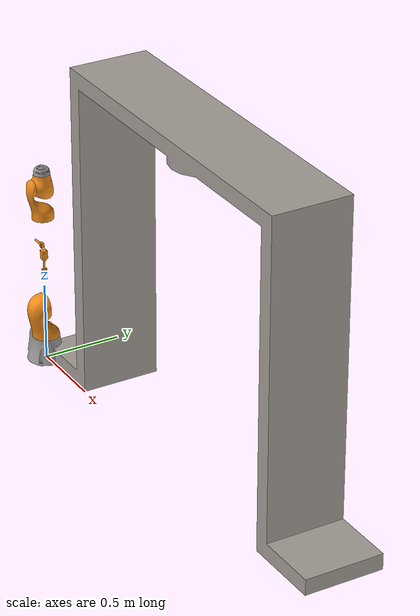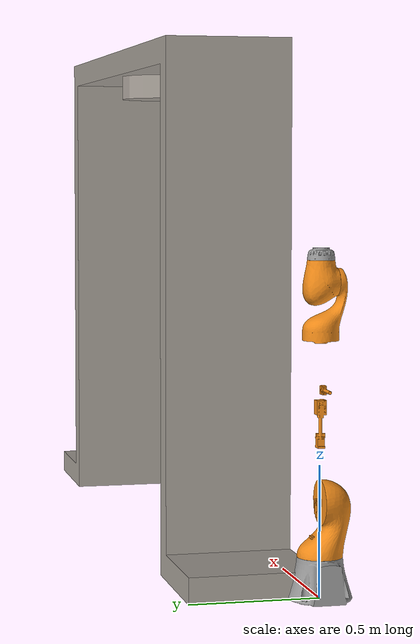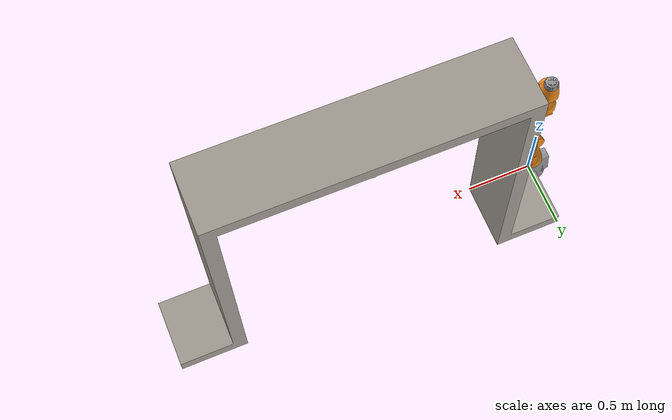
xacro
<?xml version="1.0"?>

<robot name="iiwa14" xmlns:xacro="http://www.ros.org/wiki/xacro">

  <xacro:arg name="hardware_interface" default="PositionJointInterface"/>
  <xacro:arg name="robot_name" default="iiwa"/>
  <xacro:arg name="origin_xyz" default="0 0 0"/>
  <xacro:arg name="origin_rpy" default="0 0 0"/>
  <!-- Import Rviz colors -->
  <xacro:include filename="$(find iiwa_description)/urdf/iiwa.gazebo.xacro" />
  <xacro:include filename="$(find iiwa_description)/urdf/materials.xacro" />
  <xacro:include filename="$(find iiwa_description)/urdf/iiwa.transmission.xacro" />
  <!--Import the lbr iiwa macro -->
  <xacro:include filename="$(find iiwa_description)/urdf/iiwa14.xacro"/>

  <!-- Fix to world just for testing -->

  <link name="world" />

  <joint
    name="fixed"
    type="fixed">
    <parent
      link="world" />
    <child
      link="frame" />
    <axis xyz="0 0 1"/>
  </joint>

  <link
    name="frame">
    <inertial>
      <origin
        xyz="1.5 0.25 1.25"
        rpy="0 0 0" />
      <mass
        value="2697" />
      <inertia
        ixx="0"
        ixy="0"
        ixz="0"
        iyy="0"
        iyz="0"
        izz="0" />
    </inertial>
    <visual>
      <origin
        xyz="0 0 0"
        rpy="0 0 0" />
      <geometry>
        <mesh
          filename="package://iiwa_description/meshes/iiwa14/visual/base_link.STL"/>
      </geometry>
      <material
        name="">
        <color
          rgba="0.64706 0.61961 0.58824 1" />
      </material>
    </visual>
    <collision>
      <origin
        xyz="0 0 0"
        rpy="0 0 0" />
      <geometry>
        <mesh
          filename="package://iiwa_description/meshes/iiwa14/collision/base_link.STL" />
      </geometry>
    </collision>
  </link>
  <!--iiwa-->
  <xacro:iiwa14 hardware_interface="$(arg hardware_interface)" robot_name="$(arg robot_name)" parent="world">
    <origin xyz="$(arg origin_xyz)" rpy="$(arg origin_rpy)" />
  </xacro:iiwa14>

  <xacro:iiwa_gazebo robot_name="$(arg robot_name)"/>
  <xacro:iiwa_transmission hardware_interface="$(arg hardware_interface)" robot_name="$(arg robot_name)"/>

</robot>

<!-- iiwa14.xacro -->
<robot xmlns:xacro="http://www.ros.org/wiki/xacro">

  <!-- some constants -->
  <xacro:property name="safety_controller_k_pos" value="100" />
  <xacro:property name="safety_controller_k_vel" value="2" />
  <xacro:property name="max_effort" value="5000"/>
  <xacro:property name="max_velocity" value="10"/>
  <xacro:property name="joint_friction" value="0.05" />
  <xacro:property name="joint_damping" value="10.8" />
  <xacro:property name="PIhalf" value="1.570796" />
  <xacro:property name="PI" value="3.141592" />

  <xacro:macro name="iiwa14" params="parent hardware_interface robot_name *origin">

    <!--joint between {parent} and link_0-->
    <joint name="${parent}_${robot_name}_joint" type="fixed">
      <xacro:insert_block name="origin"/>
      <parent link="${parent}"/>
      <child link="${robot_name}_link_0"/>
      <axis xyz="0 0 1"/>
    </joint>

    <link name="${robot_name}_link_0">
      <inertial>
        <origin xyz="-0.1 0 0.07" rpy="0 0 0"/>
        <mass value="5"/>
        <inertia ixx="0.05"  ixy="0"  ixz="0" iyy="0.06" iyz="0" izz="0.03" />
      </inertial>

      <visual>
        <origin xyz="0 0 0" rpy="0 0 0"/>
        <geometry>
          <mesh filename="package://iiwa_description/meshes/iiwa14/visual/link_0.stl"/>
        </geometry>
        <material name="Grey"/>
      </visual>

      <collision>
        <origin xyz="0 0 0" rpy="0 0 0"/>
        <geometry>
          <mesh filename="package://iiwa_description/meshes/iiwa14/collision/link_0.stl"/>
        </geometry>
        <material name="Grey"/>
      </collision>

      <self_collision_checking>
        <origin xyz="0 0 0" rpy="0 0 0"/>
        <geometry>
          <capsule radius="0.15" length="0.25"/>
        </geometry>
      </self_collision_checking>

    </link>

    <!-- joint between link_0 and link_1 -->
    <joint name="${robot_name}_joint_1" type="revolute">
      <parent link="${robot_name}_link_0"/>
      <child link="${robot_name}_link_1"/>
      <origin xyz="0 0 0.1575" rpy="0 0 0"/>
      <axis xyz="0 0 1"/>
      <limit lower="${-170 * PI / 180}" upper="${170 * PI / 180}"
             effort="${max_effort}" velocity="${max_velocity}" />
      <dynamics damping="${joint_damping}" friction="${joint_friction}"/>
    </joint>

    <link name="${robot_name}_link_1">
      <inertial>
        <origin xyz="0 -0.03 0.12" rpy="0 0 0"/>
        <mass value="4"/>
        <inertia ixx="0.1"  ixy="0"  ixz="0" iyy="0.09" iyz="0" izz="0.02" />
      </inertial>

      <visual>
        <origin xyz="0 0 0" rpy="0 0 0"/>
        <geometry>
          <mesh filename="package://iiwa_description/meshes/iiwa14/visual/link_1.stl"/>
        </geometry>
        <material name="Orange"/>
      </visual>

      <collision>
        <origin xyz="0 0 0" rpy="0 0 0"/>
        <geometry>
          <mesh filename="package://iiwa_description/meshes/iiwa14/collision/link_1.stl"/>
        </geometry>
        <material name="Orange"/>
      </collision>
    </link>

    <!-- joint between link_1 and link_2 -->
    <joint name="${robot_name}_joint_2" type="revolute">
      <parent link="${robot_name}_link_1"/>
      <child link="${robot_name}_link_2"/>
      <origin xyz="0 0 0.2025" rpy="${PI / 2}   0 ${PI}"/>
      <axis xyz="0 0 1"/>
      <limit lower="${-120 * PI / 180}" upper="${120 * PI / 180}"
             effort="${max_effort}" velocity="${max_velocity}" />
      <dynamics damping="${joint_damping}" friction="${joint_friction}"/>
    </joint>

    <link name="${robot_name}_link_2">
      <inertial>
        <origin xyz="0.0003 0.059 0.042" rpy="0 0 0"/>
        <mass value="4"/>
        <inertia ixx="0.05"  ixy="0"  ixz="0" iyy="0.018" iyz="0" izz="0.044" />
      </inertial>

      <visual>
        <origin xyz="0 0 0" rpy="0 0 0"/>
        <geometry>
          <mesh filename="package://iiwa_description/meshes/iiwa14/visual/link_2.stl"/>
        </geometry>
        <material name="Orange"/>
      </visual>

      <collision>
        <origin xyz="0 0 0" rpy="0 0 0"/>
        <geometry>
          <mesh filename="package://iiwa_description/meshes/iiwa14/collision/link_2.stl"/>
        </geometry>
        <material name="Orange"/>
      </collision>
    </link>

    <!-- joint between link_2 and link_3 -->
    <joint name="${robot_name}_joint_3" type="revolute">
      <parent link="${robot_name}_link_2"/>
      <child link="${robot_name}_link_3"/>
      <origin xyz="0 0.2045 0" rpy="${PI / 2} 0 ${PI}"/>
      <axis xyz="0 0 1"/>
      <limit lower="${-170 * PI / 180}" upper="${170 * PI / 180}"
             effort="${max_effort}" velocity="${max_velocity}" />
      <dynamics damping="${joint_damping}" friction="${joint_friction}"/>
    </joint>

    <link name="${robot_name}_link_3">
      <inertial>
        <origin xyz="0 0.03 0.13" rpy="0 0 0"/>
        <mass value="3"/>
        <inertia ixx="0.08"  ixy="0"  ixz="0" iyy="0.075" iyz="0" izz="0.01" />
      </inertial>

      <visual>
        <origin xyz="0 0 0" rpy="0 0 0"/>
        <geometry>
          <mesh filename="package://iiwa_description/meshes/iiwa14/visual/link_3.stl"/>
        </geometry>
        <material name="Orange"/>
      </visual>

      <collision>
        <origin xyz="0 0 0" rpy="0 0 0"/>
        <geometry>
          <mesh filename="package://iiwa_description/meshes/iiwa14/collision/link_3.stl"/>
        </geometry>
        <material name="Orange"/>
      </collision>
    </link>

    <!-- joint between link_3 and link_4 -->
    <joint name="${robot_name}_joint_4" type="revolute">
      <parent link="${robot_name}_link_3"/>
      <child link="${robot_name}_link_4"/>
      <origin xyz="0 0 0.2155" rpy="${PI / 2} 0 0"/>
      <axis xyz="0 0 1"/>
      <limit lower="${-120 * PI / 180}" upper="${120 * PI / 180}"
             effort="${max_effort}" velocity="${max_velocity}" />
      <dynamics damping="${joint_damping}" friction="${joint_friction}"/>
    </joint>

    <link name="${robot_name}_link_4">
      <inertial>
        <origin xyz="0 0.067 0.034" rpy="0 0 0"/>
        <mass value="2.7"/>
        <inertia ixx="0.03"  ixy="0"  ixz="0" iyy="0.01" iyz="0" izz="0.029" />
      </inertial>

      <visual>
        <origin xyz="0 0 0" rpy="0 0 0"/>
        <geometry>
          <mesh filename="package://iiwa_description/meshes/iiwa14/visual/link_4.stl"/>
        </geometry>
        <material name="Orange"/>
      </visual>

      <collision>
        <origin xyz="0 0 0" rpy="0 0 0"/>
        <geometry>
          <mesh filename="package://iiwa_description/meshes/iiwa14/collision/link_4.stl"/>
        </geometry>
        <material name="Orange"/>
      </collision>
    </link>

    <!-- joint between link_4 and link_5 -->
    <joint name="${robot_name}_joint_5" type="revolute">
      <parent link="${robot_name}_link_4"/>
      <child link="${robot_name}_link_5"/>
      <origin xyz="0 0.1845 0" rpy="${-PI / 2} ${PI} 0"/>
      <axis xyz="0 0 1"/>
      <limit lower="${-170 * PI / 180}" upper="${170 * PI / 180}"
             effort="${max_effort}" velocity="${max_velocity}" />
      <dynamics damping="${joint_damping}" friction="${joint_friction}"/>
    </joint>

    <link name="${robot_name}_link_5">
      <inertial>
        <origin xyz="0.0001 0.021 0.076" rpy="0 0 0"/>
        <mass value="1.7"/>
        <inertia ixx="0.02"  ixy="0"  ixz="0" iyy="0.018" iyz="0" izz="0.005" />
      </inertial>

      <visual>
        <origin xyz="0 0 0" rpy="0 0 0"/>
        <geometry>
          <mesh filename="package://iiwa_description/meshes/iiwa14/visual/link_5.stl"/>
        </geometry>
        <material name="Orange"/>
      </visual>

      <collision>
        <origin xyz="0 0 0" rpy="0 0 0"/>
        <geometry>
          <mesh filename="package://iiwa_description/meshes/iiwa14/collision/link_5.stl"/>
        </geometry>
        <material name="Orange"/>
      </collision>
    </link>

    <!-- joint between link_5 and link_6 -->
    <joint name="${robot_name}_joint_6" type="revolute">
      <parent link="${robot_name}_link_5"/>
      <child link="${robot_name}_link_6"/>
      <origin xyz="0 0 0.2155" rpy="${PI / 2} 0 0"/>
      <axis xyz="0 0 1"/>
      <limit lower="${-120 * PI / 180}" upper="${120 * PI / 180}"
             effort="${max_effort}" velocity="${max_velocity}" />
      <dynamics damping="${joint_damping}" friction="${joint_friction}"/>
    </joint>

    <link name="${robot_name}_link_6">
      <inertial>
        <origin xyz="0 0.0006 0.0004" rpy="0 0 0"/>
        <mass value="1.8"/>
        <inertia ixx="0.005"  ixy="0"  ixz="0" iyy="0.0036" iyz="0" izz="0.1" />
      </inertial>

      <visual>
        <origin xyz="0 0 0" rpy="0 0 0"/>
        <geometry>
          <mesh filename="package://iiwa_description/meshes/iiwa14/visual/link_6.stl"/>
        </geometry>
        <material name="Orange"/>
      </visual>

      <collision>
        <origin xyz="0 0 0" rpy="0 0 0"/>
        <geometry>
          <mesh filename="package://iiwa_description/meshes/iiwa14/collision/link_6.stl"/>
        </geometry>
        <material name="Orange"/>
      </collision>
    </link>

    <!-- joint between link_6 and link_7 -->
    <joint name="${robot_name}_joint_7" type="revolute">
      <parent link="${robot_name}_link_6"/>
      <child link="${robot_name}_link_7"/>
      <origin xyz="0 0.081 0" rpy="${- PI / 2} ${PI} 0"/>
      <axis xyz="0 0 1"/>
      <limit lower="${-175 * PI / 180}" upper="${175 * PI / 180}"
             effort="${max_effort}" velocity="${max_velocity}" />
      <dynamics damping="${joint_damping}" friction="${joint_friction}"/>
      <sensor name="force_torque" type="force_torque">
          <update_rate>100</update_rate>
      </sensor>
    </joint>

    <link name="${robot_name}_link_7">
      <inertial>
        <origin xyz="0 0 -0.1" rpy="0 0 0"/>
        <mass value="0.3"/>
        <inertia ixx="0.1"  ixy="0"  ixz="0" iyy="0.1" iyz="0" izz="0.1" />
      </inertial>

      <visual>
        <origin xyz="0 0 0" rpy="0 0 0"/>
        <geometry>
          <mesh filename="package://iiwa_description/meshes/iiwa14/visual/link_7.stl"/>
        </geometry>
        <material name="Grey"/>
      </visual>

      <collision>
        <origin xyz="0 0 0" rpy="0 0 0"/>
        <geometry>
          <mesh filename="package://iiwa_description/meshes/iiwa14/collision/link_7.stl"/>
        </geometry>
        <material name="Grey"/>
      </collision>
    </link>

  </xacro:macro>

</robot>
